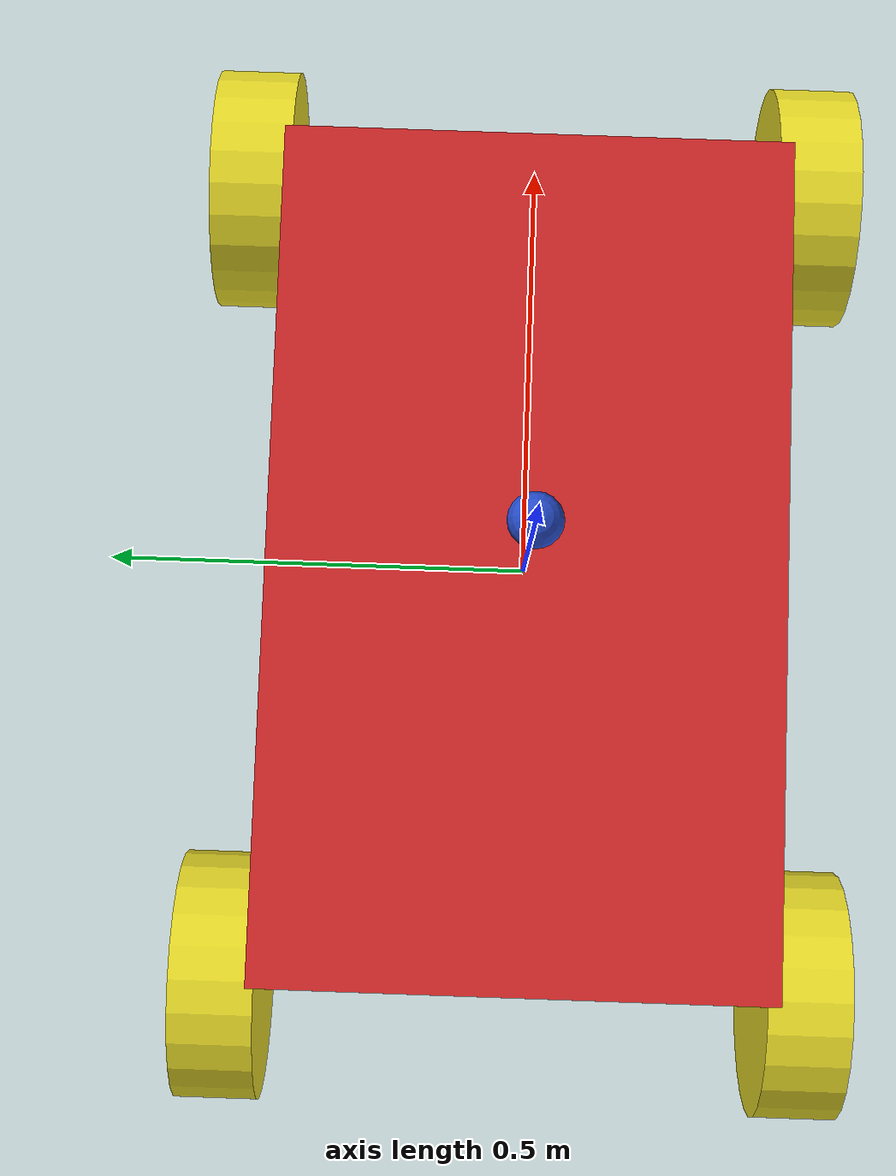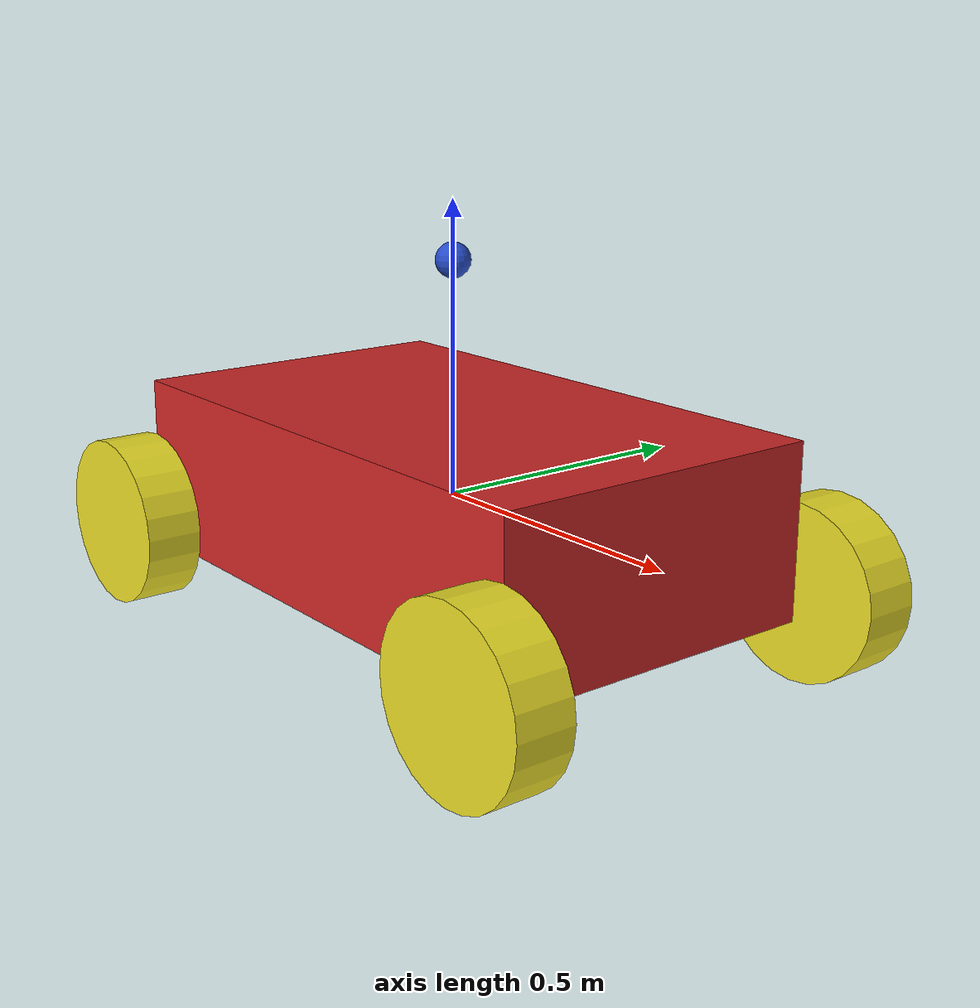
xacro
<?xml version="1.0"?>
<robot name="differential_drive_robot" xmlns:xacro="http://www.ros.org/wiki/xacro">

  <!-- Properties -->
  <xacro:property name="body_link_x_dim" value="1"/>
  <xacro:property name="body_link_y_dim" value="0.6"/>
  <xacro:property name="body_link_z_dim" value="0.3"/>

  <xacro:property name="wheel_link_radius" value="0.15"/>
  <xacro:property name="wheel_link_length" value="0.1"/>
  <xacro:property name="wheel_link_z_location" value="-0.1"/>

  <xacro:property name="body_density" value="2710.0"/>
  <xacro:property name="wheel_density" value="2710.0"/>
  <xacro:property name="pi_const" value="3.14159265"/>

  <xacro:property name="body_mass" value="${body_density*body_link_x_dim*body_link_y_dim*body_link_z_dim}"/>
  <xacro:property name="wheel_mass" value="${wheel_density*pi_const*wheel_link_radius*wheel_link_radius*wheel_link_length}"/>

  <xacro:property name="Iz_wheel" value="${0.5*wheel_mass*wheel_link_radius*wheel_link_radius}"/>
  <xacro:property name="I_wheel" value="${(1.0/12.0)*wheel_mass*(3.0*wheel_link_radius*wheel_link_radius+wheel_link_length*wheel_link_length)}"/>

  <!-- Macro for wheel inertia -->
  <xacro:macro name="inertia_wheel">
    <inertial>
      <origin rpy="0 0 0" xyz="0 0 0"/>
      <mass value="${wheel_mass}"/>
      <inertia ixx="${I_wheel}" ixy="0.0" ixz="0.0" iyy="${I_wheel}" iyz="0" izz="${Iz_wheel}" />
    </inertial>
  </xacro:macro>

  <!-- Include Gazebo plugin settings -->
  <xacro:include filename="$(find robot_model_pkg)/urdf/robot.gazebo" />

  <!-- Dummy link (root) -->
  <link name="dummy"/>
  <joint name="dummy_joint" type="fixed">
    <parent link="dummy"/>
    <child link="body_link"/>
  </joint>

  <!-- Body link -->
  <link name="body_link">
    <visual>
      <geometry>
        <box size="${body_link_x_dim} ${body_link_y_dim} ${body_link_z_dim}"/>
      </geometry>
      <origin rpy="0 0 0" xyz="0 0 0"/>
    </visual>

    <collision>
      <geometry>
        <box size="${body_link_x_dim} ${body_link_y_dim} ${body_link_z_dim}"/>
      </geometry>
      <origin rpy="0 0 0" xyz="0 0 0"/>
    </collision>

    <inertial>
      <origin rpy="0 0 0" xyz="0 0 0"/>
      <mass value="${body_mass}"/>
      <inertia
        ixx="${(1.0/12.0)*body_mass*(body_link_y_dim*body_link_y_dim+body_link_z_dim*body_link_z_dim)}"
        iyy="${(1.0/12.0)*body_mass*(body_link_x_dim*body_link_x_dim+body_link_z_dim*body_link_z_dim)}"
        izz="${(1.0/12.0)*body_mass*(body_link_y_dim*body_link_y_dim+body_link_x_dim*body_link_x_dim)}"
        ixy="0.0" ixz="0.0" iyz="0.0"/>
    </inertial>
  </link>

  <!-- WHEELS -->
  <!-- BACK RIGHT WHEEL -->
  <joint name="wheel1_joint" type="continuous">
    <parent link="body_link"/>
    <child link="wheel1_link"/>
    <origin xyz="${-body_link_x_dim/2} ${-body_link_y_dim/2-wheel_link_length/2} ${wheel_link_z_location}" rpy="0 0 0"/>
    <axis xyz="0 1 0"/>
  </joint>

  <link name="wheel1_link">
    <visual>
      <origin rpy="1.570795 0 0" xyz="0 0 0"/>
      <geometry>
        <cylinder length="${wheel_link_length}" radius="${wheel_link_radius}"/>
      </geometry>
    </visual>
    <collision>
      <origin rpy="1.570795 0 0" xyz="0 0 0"/>
      <geometry>
        <cylinder length="${wheel_link_length}" radius="${wheel_link_radius}"/>
      </geometry>
    </collision>
    <xacro:inertia_wheel/>
  </link>

  <!-- BACK LEFT WHEEL -->
  <joint name="wheel2_joint" type="continuous">
    <parent link="body_link"/>
    <child link="wheel2_link"/>
    <origin xyz="${-body_link_x_dim/2} ${body_link_y_dim/2+wheel_link_length/2} ${wheel_link_z_location}" rpy="0 0 0"/>
    <axis xyz="0 1 0"/>
  </joint>

  <link name="wheel2_link">
    <visual>
      <origin rpy="1.570795 0 0" xyz="0 0 0"/>
      <geometry>
        <cylinder length="${wheel_link_length}" radius="${wheel_link_radius}"/>
      </geometry>
    </visual>
    <collision>
      <origin rpy="1.570795 0 0" xyz="0 0 0"/>
      <geometry>
        <cylinder length="${wheel_link_length}" radius="${wheel_link_radius}"/>
      </geometry>
    </collision>
    <xacro:inertia_wheel/>
  </link>

  <!-- FRONT RIGHT WHEEL -->
  <joint name="wheel3_joint" type="continuous">
    <parent link="body_link"/>
    <child link="wheel3_link"/>
    <origin xyz="${body_link_x_dim/2} ${-body_link_y_dim/2-wheel_link_length/2} ${wheel_link_z_location}" rpy="0 0 0"/>
    <axis xyz="0 1 0"/>
  </joint>

  <link name="wheel3_link">
    <visual>
      <origin rpy="1.570795 0 0" xyz="0 0 0"/>
      <geometry>
        <cylinder length="${wheel_link_length}" radius="${wheel_link_radius}"/>
      </geometry>
    </visual>
    <collision>
      <origin rpy="1.570795 0 0" xyz="0 0 0"/>
      <geometry>
        <cylinder length="${wheel_link_length}" radius="${wheel_link_radius}"/>
      </geometry>
    </collision>
    <xacro:inertia_wheel/>
  </link>

  <!-- FRONT LEFT WHEEL -->
  <joint name="wheel4_joint" type="continuous">
    <parent link="body_link"/>
    <child link="wheel4_link"/>
    <origin xyz="${body_link_x_dim/2} ${body_link_y_dim/2+wheel_link_length/2} ${wheel_link_z_location}" rpy="0 0 0"/>
    <axis xyz="0 1 0"/>
  </joint>

  <link name="wheel4_link">
    <visual>
      <origin rpy="1.570795 0 0" xyz="0 0 0"/>
      <geometry>
        <cylinder length="${wheel_link_length}" radius="${wheel_link_radius}"/>
      </geometry>
    </visual>
    <collision>
      <origin rpy="1.570795 0 0" xyz="0 0 0"/>
      <geometry>
        <cylinder length="${wheel_link_length}" radius="${wheel_link_radius}"/>
      </geometry>
    </collision>
    <xacro:inertia_wheel/>
  </link>

  <!-- GPS Sensor for Robot -->
  <link name="gps_link">
    <visual>
      <geometry>
        <sphere radius="0.03"/>
      </geometry>
      <origin xyz="0 0 0" rpy="0 0 0"/>
      <material name="blue"/>
    </visual>
  </link>

  <joint name="gps_joint" type="fixed">
    <parent link="body_link"/>
    <child link="gps_link"/>
    <origin xyz="0 0 0.4" rpy="0 0 0"/>
  </joint>

  <gazebo reference="gps_link">
    <sensor type="gps" name="gps_sensor">
      <always_on>true</always_on>
      <update_rate>10</update_rate>
      <visualize>true</visualize>
      <plugin name="gps_plugin" filename="libgazebo_ros_gps_sensor.so">
        <ros>
          <namespace>/robot</namespace>
          <remapping>~/fix:=/robot/gps/nav</remapping>
          <remapping>~/velocity:=/robot/gps/vel</remapping>
        </ros>
      </plugin>
    </sensor>
  </gazebo>

</robot>
